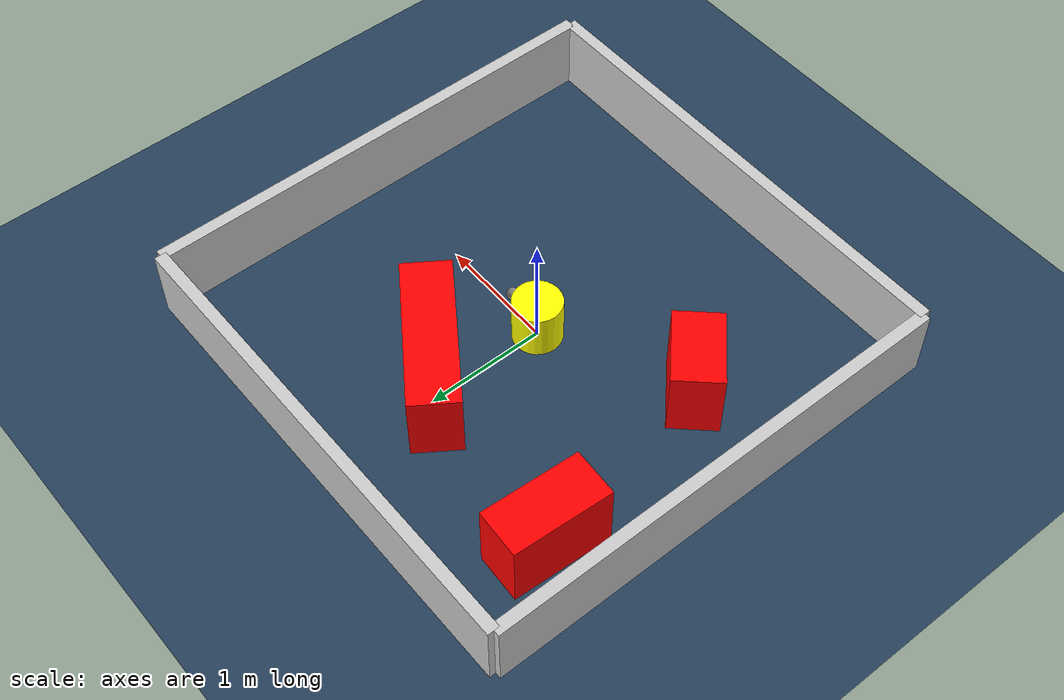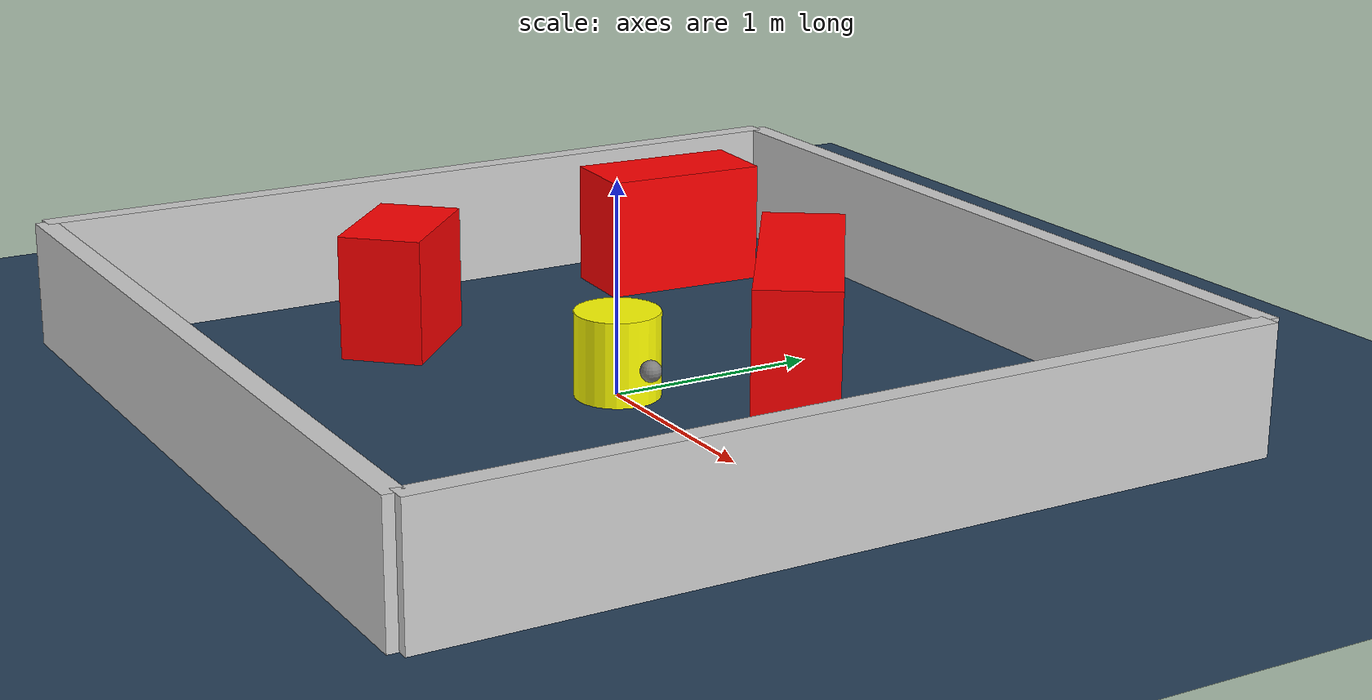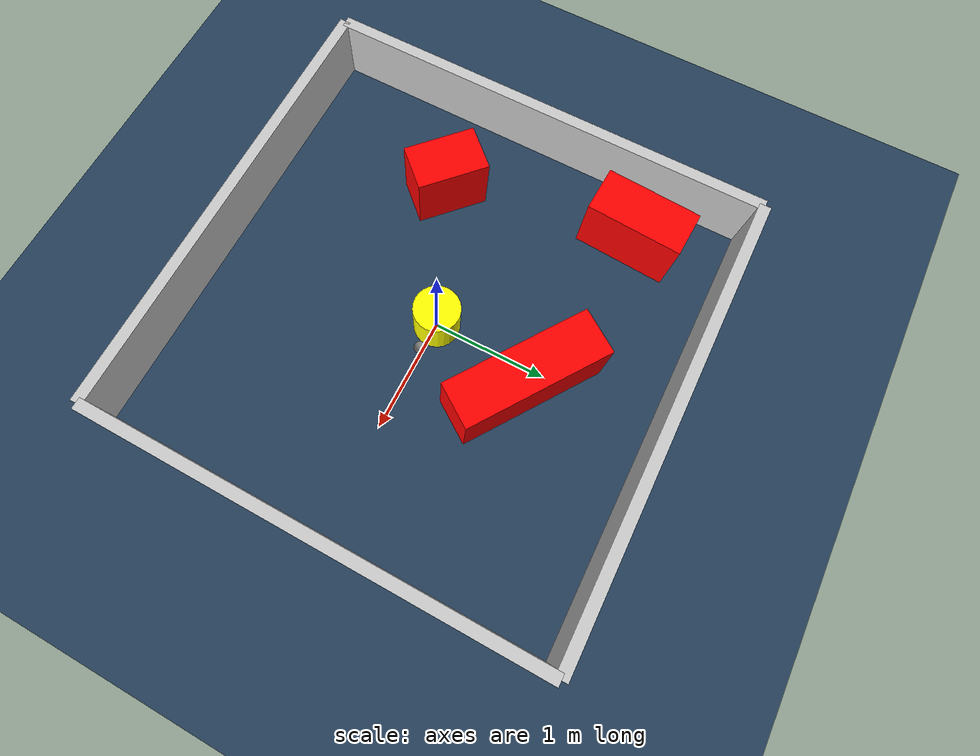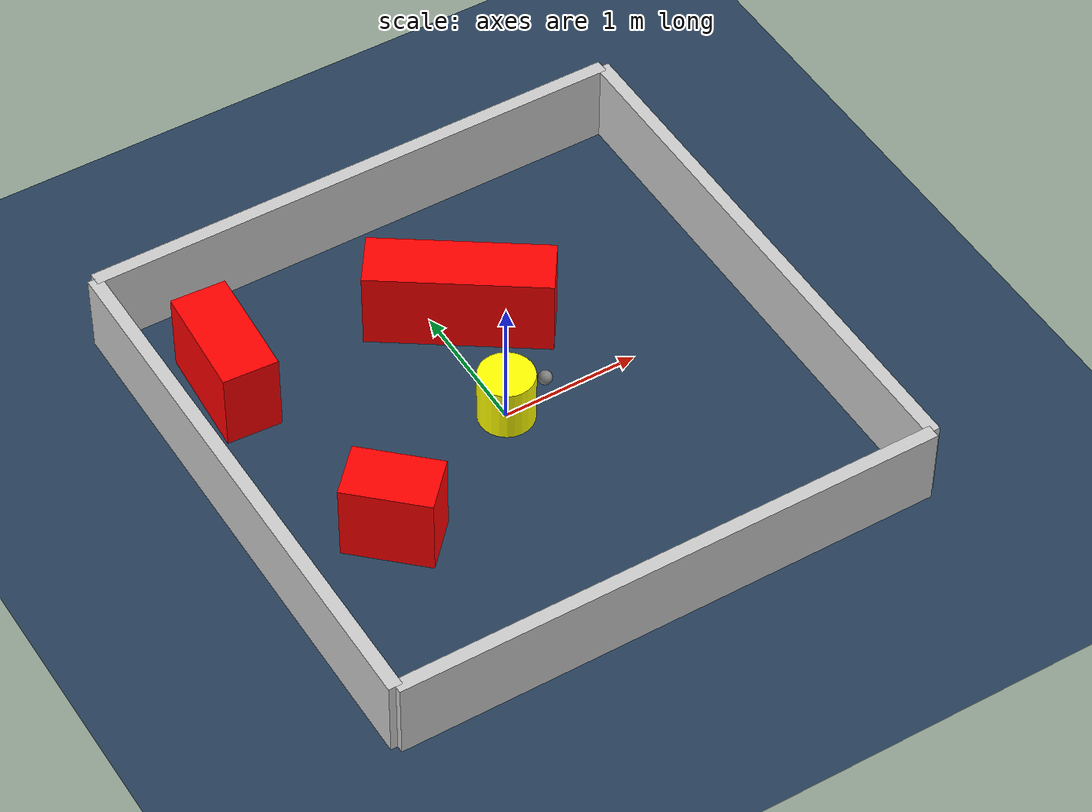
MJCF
<?xml version="1.0" ?>
<mujoco model="generated_environment">
  <option timestep="0.01" integrator="RK4" cone="elliptic"/>
  <default>
    <geom density="1"/>
  </default>
  <asset>
    <texture builtin="gradient" height="3072" rgb1="0.3 0.5 0.7" rgb2="0 0 0" type="skybox" width="512"/>
    <texture builtin="checker" height="300" mark="edge" markrgb="0.8 0.8 0.8" name="groundplane" rgb1="0.2 0.3 0.4" rgb2="0.1 0.2 0.3" type="2d" width="300"/>
    <material name="groundplane" reflectance="0.2" texrepeat="5 5" texture="groundplane" texuniform="true"/>
    <material name="robot" rgba="0.0 1.0 0.0 1"/>
  </asset>
  <worldbody>
    <light dir="0 0 -1" directional="true" pos="0 0 1.5"/>
    <geom condim="4" friction="1.0 0.005 0.001" material="groundplane" name="floor" size="0 0 0.05" type="plane"/>
    <body name="walls">
      <geom name="wall_1" condim="4" pos="-2.0 0.0 0.3" rgba="0.800000011920929 0.800000011920929 0.800000011920929 1.0" size="0.05 2.0 0.3" type="box"/>
      <geom name="wall_2" condim="4" pos="2.0 0.0 0.3" rgba="0.800000011920929 0.800000011920929 0.800000011920929 1.0" size="0.05 2.0 0.3" type="box"/>
      <geom name="wall_3" condim="4" pos="0.0 -2.0 0.3" rgba="0.800000011920929 0.800000011920929 0.800000011920929 1.0" size="2.0 0.05 0.3" type="box"/>
      <geom name="wall_4" condim="4" pos="0.0 2.0 0.3" rgba="0.800000011920929 0.800000011920929 0.800000011920929 1.0" size="2.0 0.05 0.3" type="box"/>
    </body>
    <body name="robot">
      <joint name="joint_x" type="slide" pos="0 0 0" axis="1 0 0"/>
      <joint name="joint_y" type="slide" pos="0 0 0" axis="0 1 0"/>
      <geom name="robot" type="sphere" pos="0.3 0.0 0.2" size="0.05" mass="5." friction="1.0 0.005 0.0001" condim="4" rgba="0.5 0.5 0.5 1.0"/>
      <site name="sensor_ball"/>
    </body>
    <body name="obstacle_movable_1">
      <geom name="obstacle_movable_1" condim="4" pos="0.0 0.0 0.2" euler="0 0 0.0" friction="1.0 0.005 0.001" rgba="1.0 1.0 0.0 1.0" size="0.2 0.2 0.0" type="cylinder" mass="0.1"/>
      <joint type="free"/>
    </body>
    <body name="obstacle_2_static">
      <geom name="obstacle_2_static" condim="4" pos="0.16158131856147517 0.8716377049012156 0.3" euler="0 0 145.53276429988344" friction="1.0 0.005 0.001" rgba="1 0 0 1" size="0.6470897903125662 0.2 0.3" type="box"/>
    </body>
    <body name="obstacle_3_static">
      <geom name="obstacle_3_static" condim="4" pos="-1.1716634240932005 -0.5317072954415483 0.3" euler="0 0 136.88192188702942" friction="1.0 0.005 0.001" rgba="1 0 0 1" size="0.31357744156315015 0.2 0.3" type="box"/>
    </body>
    <body name="obstacle_4_static">
      <geom name="obstacle_4_static" condim="4" pos="-1.4848496385005192 1.1379403549416807 0.3" euler="0 0 86.62700423416298" friction="1.0 0.005 0.001" rgba="1 0 0 1" size="0.41295888916502 0.2 0.3" type="box"/>
    </body>
  </worldbody>
  <actuator>
    <motor name="actuator_x" joint="joint_x" gear="1" ctrlrange="-1 1"/>
    <motor name="actuator_y" joint="joint_y" gear="1" ctrlrange="-1 1"/>
  </actuator>
</mujoco>
